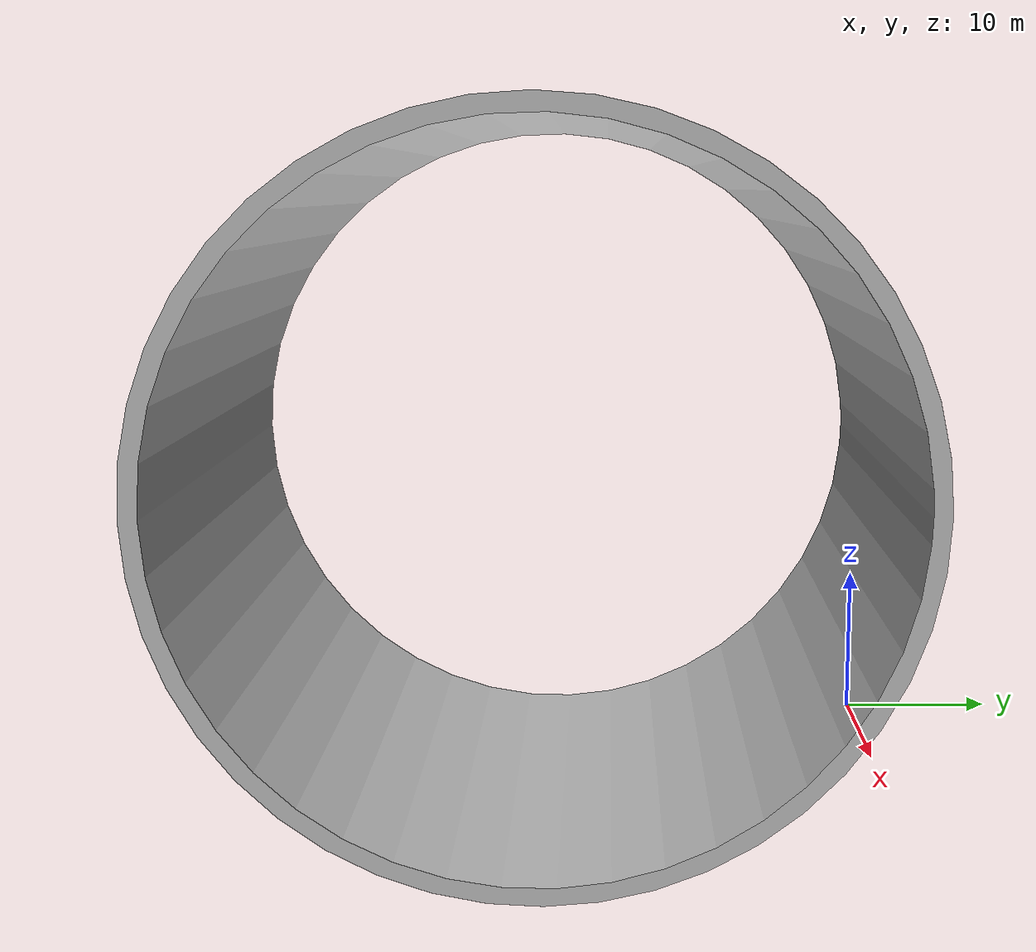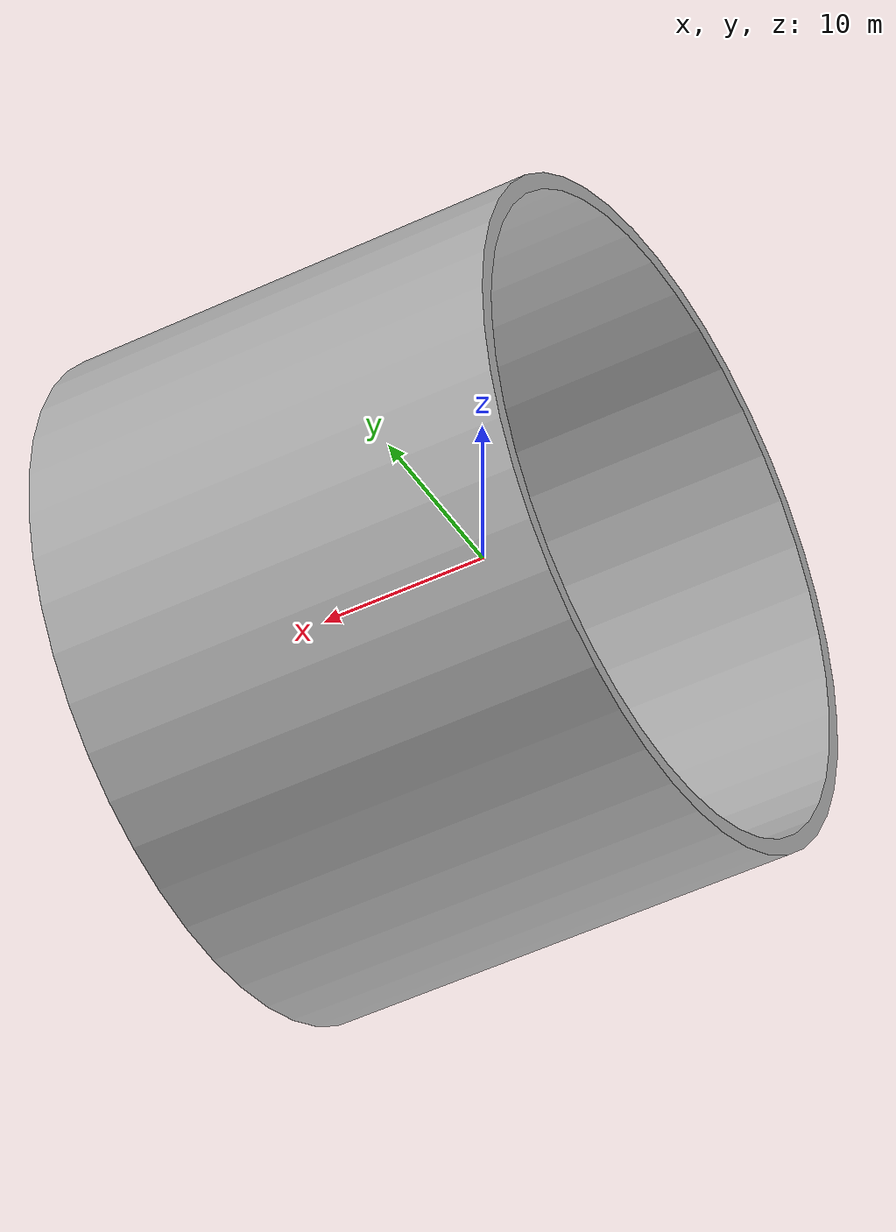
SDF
<sdf version="1.6">
  <model name="cylinder_2m">
    <link name="cylinder_2m">
      <pose frame="">0 0 0 0 -0 0</pose>
      <inertial>
        <pose frame="">250 0 -0 0 -0 0</pose>
        <mass>644030</mass>
        <inertia>
          <ixx>2.70813e+06</ixx>
          <ixy>-8.20643e-40</ixy>
          <ixz>1.34026e-23</ixz>
          <iyy>1.34186e+10</iyy>
          <iyz>0</iyz>
          <izz>1.34186e+10</izz>
        </inertia>
      </inertial>
      <collision name="cylinder_2m_collision">
        <pose frame="">0 0 0 1.5708 -0 0</pose>
        <geometry>
          <mesh>
            <scale>3 10 10</scale>
            <uri>meshes/cylinder_2m.dae</uri>
          </mesh>
        </geometry>
      </collision>
      <visual name="cylinder_2m_visual">
        <pose frame="">0 0 0 1.5708 -0 0</pose>
        <geometry>
          <mesh>
            <scale>3 10 10</scale>
            <uri>meshes/cylinder_2m.dae</uri>
          </mesh>
        </geometry>
      </visual>
    </link>
  </model>
</sdf>
